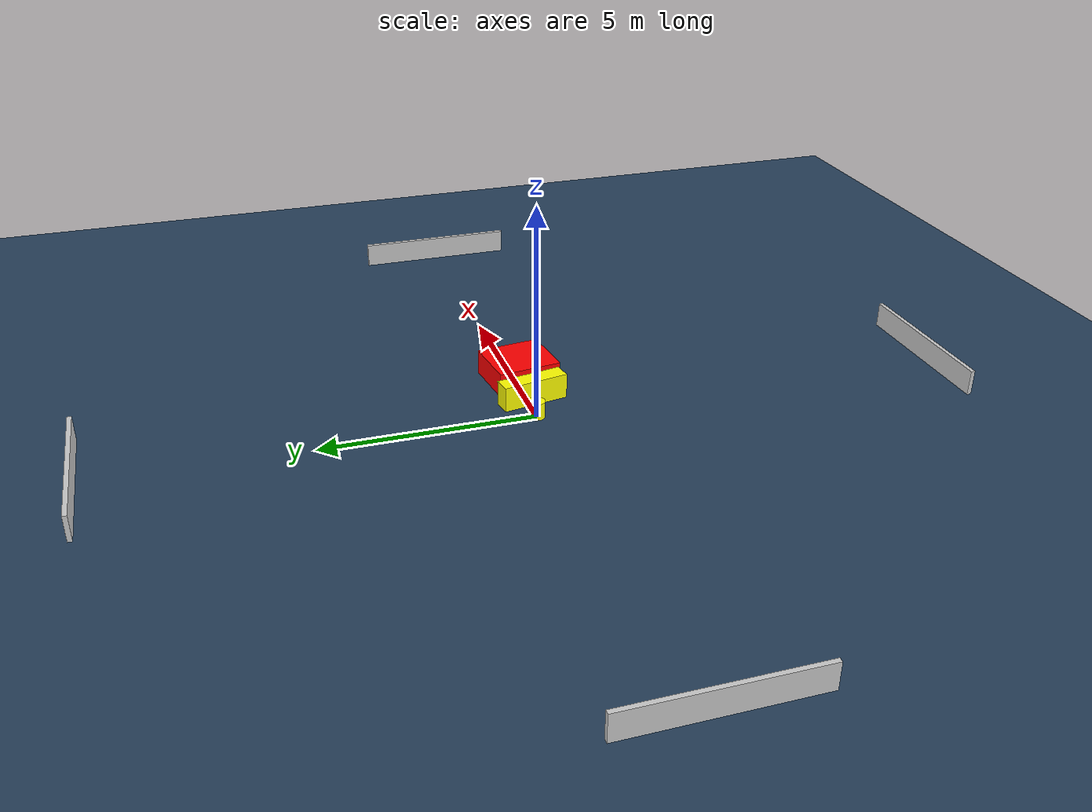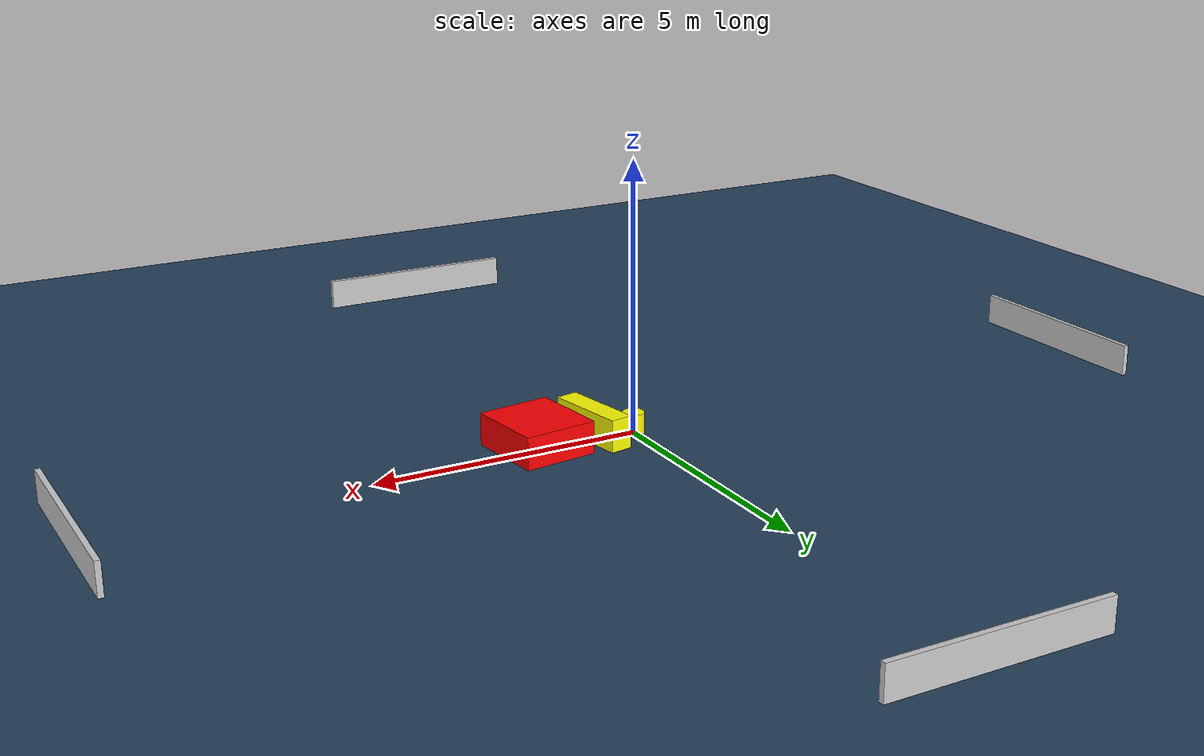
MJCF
<?xml version="1.0" ?>
<mujoco model="generated_environment">
  <option timestep="0.01" integrator="RK4" cone="elliptic"/>
  <default>
    <geom density="1"/>
  </default>
  <asset>
    <texture builtin="gradient" height="3072" name="skybox" rgb1="0.3 0.5 0.7" rgb2="0 0 0" type="skybox" width="512"/>
    <texture builtin="checker" height="300" name="groundplane" rgb1="0.2 0.3 0.4" rgb2="0.1 0.2 0.3" type="2d" width="300"/>
    <material name="groundplane" reflectance="0.2" texrepeat="5 5" texture="groundplane"/>
  </asset>
  <worldbody>
    <light dir="0 0 -1" directional="true" pos="0 0 1.5"/>
    <geom condim="3" friction="0.5 0.005 0.001" material="groundplane" name="floor" pos="0 0 0" size="0 0 0.05" type="plane"/>
    <body name="walls">
      <geom name="wall_1" condim="4" pos="-10.0 0.0 0.3" rgba="0.800000011920929 0.800000011920929 0.800000011920929 1.0" size="0.05 2.0 0.3" type="box"/>
      <geom name="wall_2" condim="4" pos="10.0 0.0 0.3" rgba="0.800000011920929 0.800000011920929 0.800000011920929 1.0" size="0.05 2.0 0.3" type="box"/>
      <geom name="wall_3" condim="4" pos="0.0 -10.0 0.3" rgba="0.800000011920929 0.800000011920929 0.800000011920929 1.0" size="2.0 0.05 0.3" type="box"/>
      <geom name="wall_4" condim="4" pos="0.0 10.0 0.3" rgba="0.800000011920929 0.800000011920929 0.800000011920929 1.0" size="2.0 0.05 0.3" type="box"/>
    </body>
    <body name="robot">
      <joint name="joint_x" type="slide" pos="0 0 0" axis="1 0 0"/>
      <joint name="joint_y" type="slide" pos="0 0 0" axis="0 1 0"/>
      <geom name="robot" type="cylinder" pos="0.0 0.0 0.2" size="0.2 0.2 0.0" mass="5.0" friction="1.0 0.005 0.0001" condim="4" rgba="1.0 1.0 0.0 1.0"/>
    </body>
    <body name="obstacle_1_movable">
      <geom name="obstacle_1_movable" condim="4" pos="0.7401111652198805 -0.13046087693764688 0.3" euler="0 0 280.0689873051445" friction="0.0 0.005 0.001" rgba="1.0 1.0 0.0 1.0" size="0.7890022867055866 0.20811167019807617 0.3" type="box" mass="0.1"/>
      <joint type="free"/>
    </body>
    <body name="obstacle_2_static">
      <geom name="obstacle_2_static" condim="4" pos="1.865525280072588 -0.13935086300784932 0.3" euler="0 0 277.072991503848" friction="0.0 0.005 0.001" rgba="1.0 0.0 0.0 1.0" size="0.7618616617163463 0.6917059117320119 0.3" type="box"/>
    </body>
  </worldbody>
  <actuator>
    <motor name="actuator_x" joint="joint_x" gear="1" ctrlrange="-1 1"/>
    <motor name="actuator_y" joint="joint_y" gear="1" ctrlrange="-1 1"/>
  </actuator>
</mujoco>
